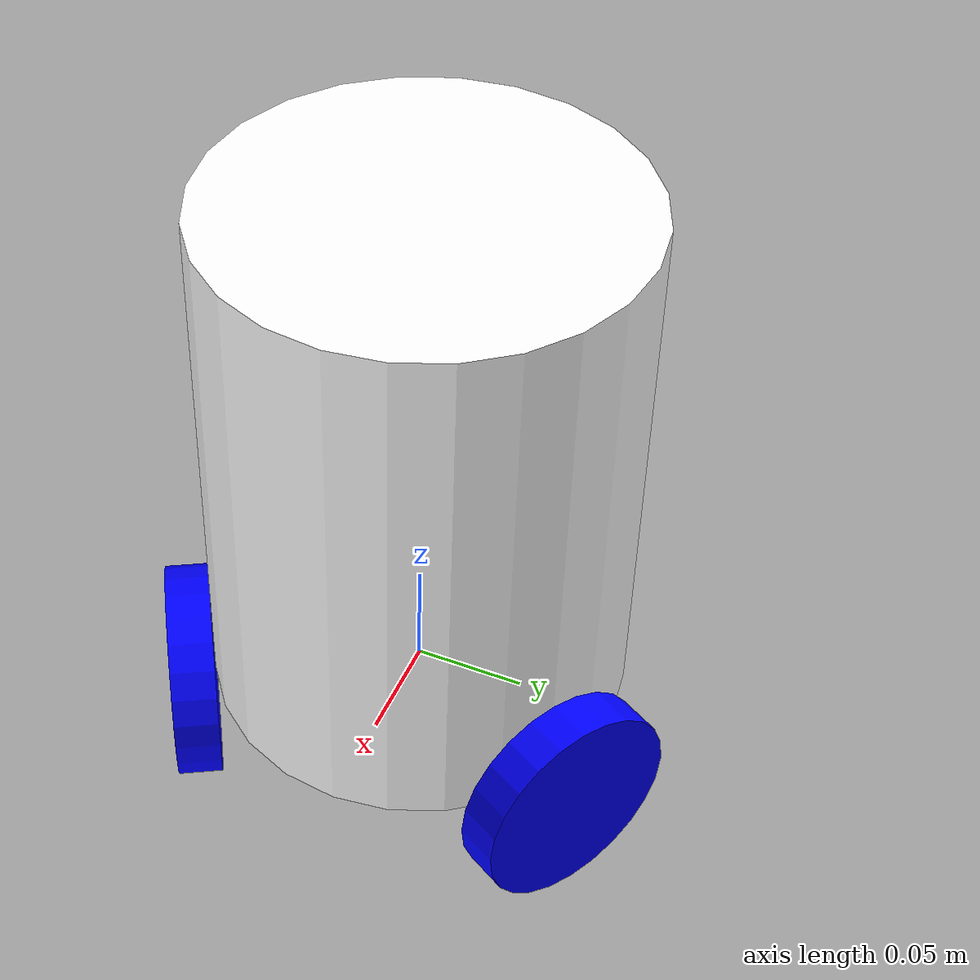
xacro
<?xml version="1.0"?>
<robot xmlns:xacro="http://www.ros.org/wiki/xacro" >

    <xacro:include filename="inertial_macros.xacro" />

    <material name="white">
        <color rgba="1 1 1 1"/>
    </material>
    <material name="orange">
        <color rgba="1 0.5 0 1"/>
    </material>
    <material name="blue">
        <color rgba="0 0 1 1"/>
    </material>
    <material name="black">
        <color rgba="0 0 0 1"/>
    </material>

    <link name="odom"></link>
    <link name="base_link"></link>

    <joint name="base_joint" type="fixed">
        <parent link="odom"/>
        <child link="base_link"/>
        <origin xyz="0 0 0"/>
    </joint>

    <!-- Chassis -->
    <joint name="chassis_joint" type="fixed">
        <parent link="base_link"/>
        <child link="chassis"/>
        <origin xyz="0 0 0"/>
    </joint>

    <link name="chassis">
        <visual>
            <origin xyz="0 0 .125"/>
            <geometry>
                <cylinder radius=".095" length=".25"/>
            </geometry>
            <material name="white"/>
        </visual>
        <collision>
            <origin xyz="0 0 .125"/>
            <geometry>
                <cylinder radius=".095" length=".25"/>
            </geometry>
        </collision>
        <xacro:inertial_cylinder mass="1" length=".25" radius=".095">
            <origin xyz="0 0 .125"/>
        </xacro:inertial_cylinder>
    </link>

    <gazebo reference="chassis">
        <material>Gazebo/White</material>
    </gazebo>

      <!-- Wheel 1   -->
    <joint name="wheel_1_joint" type="continuous">
        <parent link="chassis"/>
        <child link="wheel_1"/>
        <origin xyz="-.105 0  0" rpy="-${pi/2} 0 ${pi/2}"/>
        <axis xyz="0 0 -1"/>
    </joint>

    <link name="wheel_1">
        <visual>
            <geometry>
                <cylinder radius=".048" length=".02"/>
            </geometry>
            <material name="blue"/>
        </visual>
        <collision>
            <geometry>
                <cylinder radius=".048" length=".02"/>
            </geometry>
        </collision>
        <xacro:inertial_cylinder mass=".1" length=".02" radius=".048">
            <origin xyz="0 0 0"/>
        </xacro:inertial_cylinder>
    </link>

    <gazebo reference="wheel_1">
        <material>Gazebo/Blue</material>
        <mu1>.10</mu1>
        <mu2>.10</mu2>
    </gazebo>

    <!-- Wheel 2   -->
    <joint name="wheel_2_joint" type="continuous">
        <parent link="chassis"/>
        <child link="wheel_2"/>
        <origin xyz="${.105*sin(pi/6)} -${.105*cos(pi/6)}  0" rpy="${pi/2} -${pi} ${pi/6}"/>
        <axis xyz="0 0 -1"/>
    </joint>

    <link name="wheel_2">
        <visual>
            <geometry>
                <cylinder radius=".048" length=".02"/>
            </geometry>
            <material name="blue"/>
        </visual>
        <collision>
            <geometry>
                <cylinder radius=".048" length=".02"/>
            </geometry>
        </collision>
        <xacro:inertial_cylinder mass=".1" length=".02" radius=".048">
            <origin xyz="0 0 0"/>
        </xacro:inertial_cylinder>
    </link>

    <gazebo reference="wheel_2">
        <material>Gazebo/Blue</material>
        <mu1>.10</mu1>
        <mu2>.10</mu2>
    </gazebo>

    <!-- Wheel 3   -->
    <joint name="wheel_3_joint" type="continuous">
        <parent link="chassis"/>
        <child link="wheel_3"/>
        <origin xyz="${.105*sin(pi/6)} ${.105*cos(pi/6)}  0" rpy="-${pi/2} 0 ${-pi/6}"/>
        <axis xyz="0 0 -1"/>
    </joint>

    <link name="wheel_3">
        <visual>
            <geometry>
                <cylinder radius=".048" length=".02"/>
            </geometry>
            <material name="blue"/>
        </visual>
        <collision>
            <geometry>
                <cylinder radius=".048" length=".02"/>
            </geometry>
        </collision>
        <xacro:inertial_cylinder mass=".1" length=".02" radius=".048">
            <origin xyz="0 0 0"/>
        </xacro:inertial_cylinder>
    </link>

    <gazebo reference="wheel_3">
        <material>Gazebo/Blue</material>
        <mu1>.10</mu1>
        <mu2>.10</mu2>
    </gazebo>

    <!-- Camera   -->

    <link name="camera_link"></link>

    <joint name="camera_joint" type="fixed">
        <parent link="chassis"/>
        <child link="camera_link"/>
        <origin xyz="0 0 .2"/>
    </joint>

</robot>
